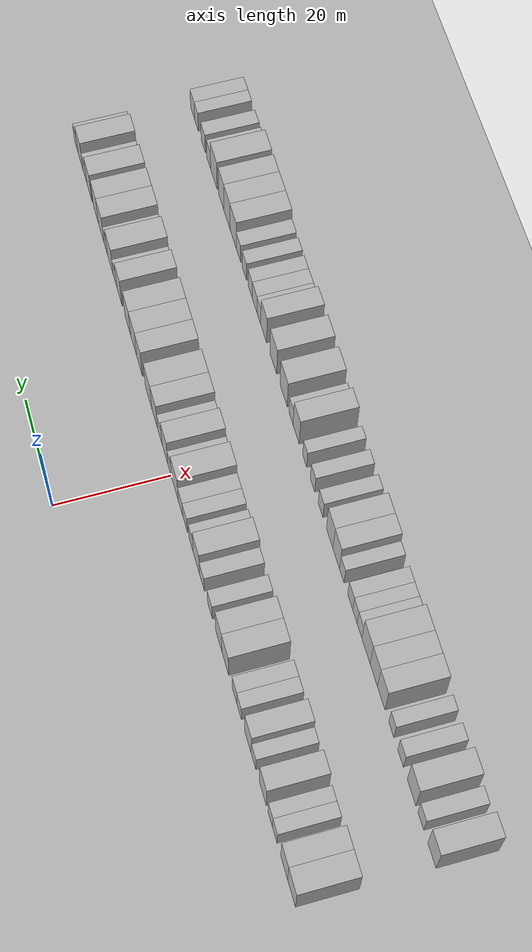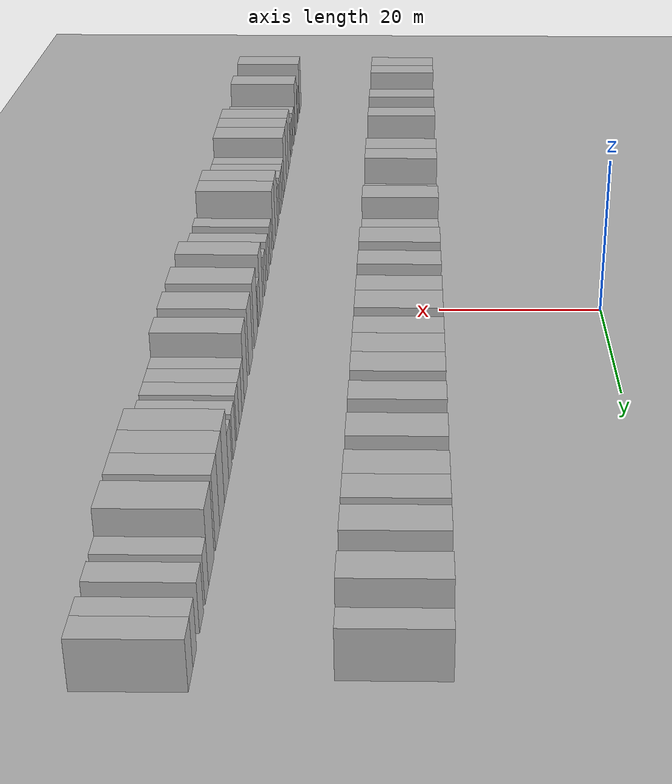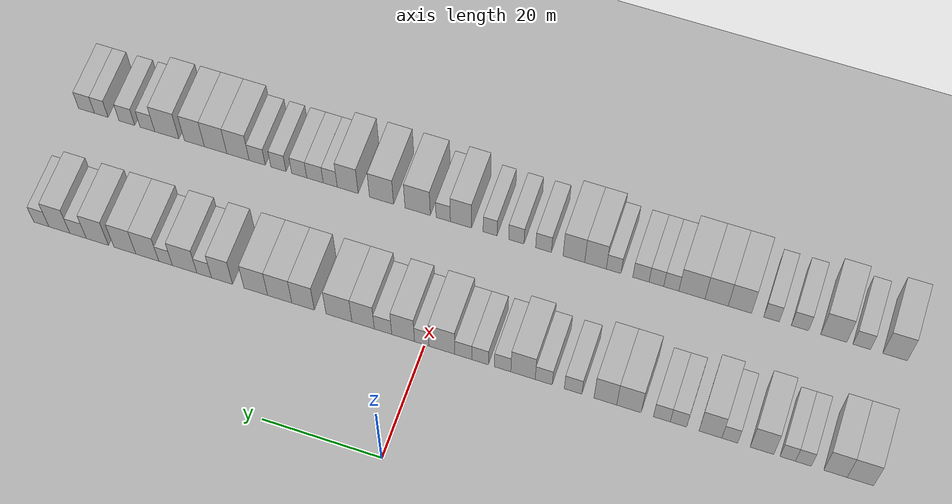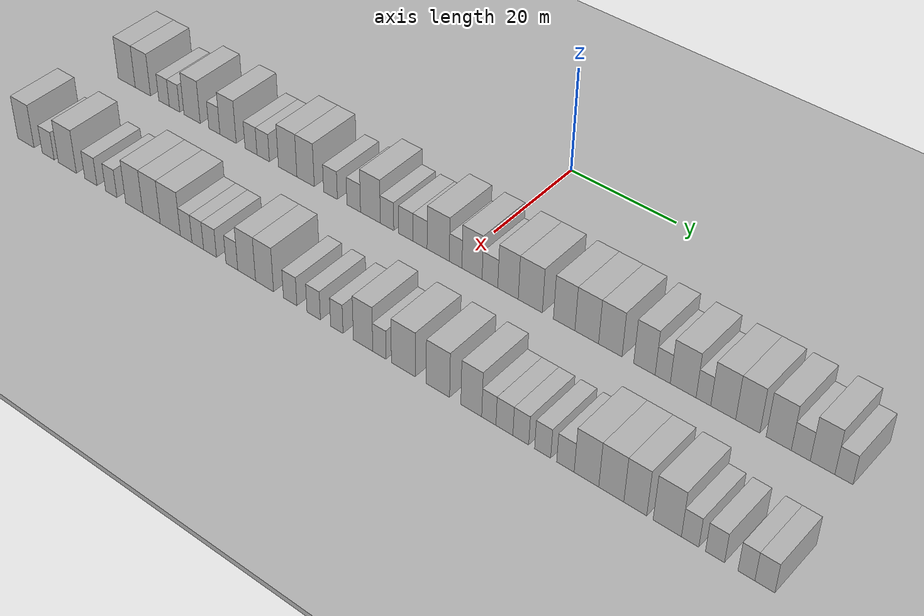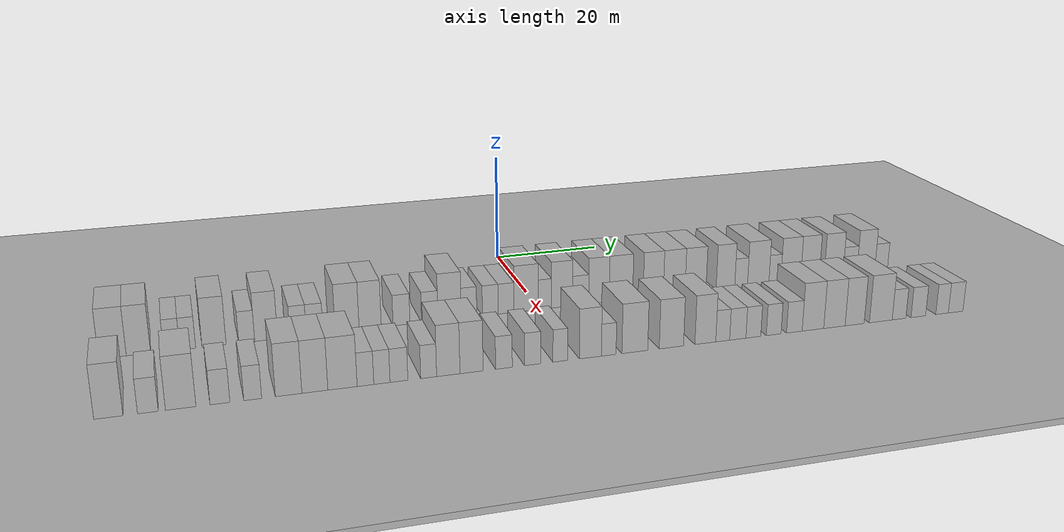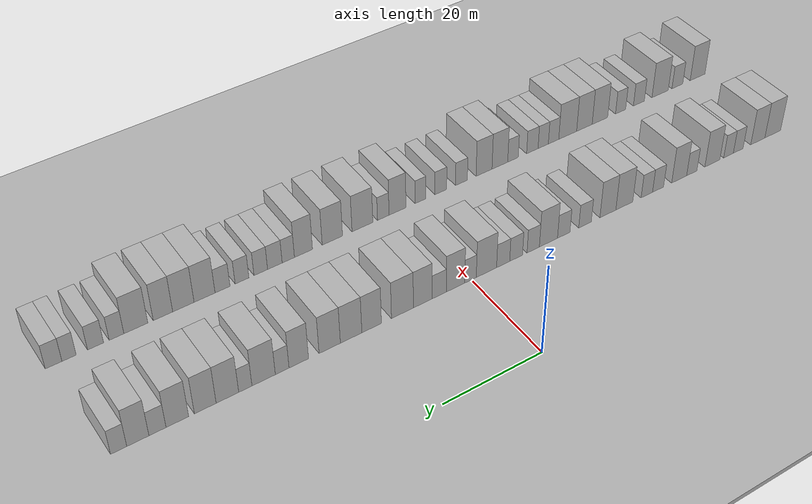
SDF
<sdf version="1.6">
 <world name="default">
  <include><name>ground_plane_1</name><uri>model://HANNAS_ground_plane</uri></include>
  <include>
   <name>ground_plane_2</name>
   <uri>model://HANNAS_ground_plane</uri>
   <pose>100 0 0  0 0 0</pose>
  </include>
  <model name="building_38">
   <static>1</static>
   <pose>25.0000 -71.4664 0 0.000000 0.000000 0.000000</pose>
   <link name="link">
    <pose>0 0 4.50 0 0 0</pose>
    <collision name="collision"><geometry><box><size>10.0000 4.2070 9.0000</size></box></geometry></collision>
    <visual name="visual">
     <cast_shadows>0</cast_shadows>
     <geometry><box><size>10.0000 4.2070 9.0000</size></box></geometry>
     <material>
      <script>
       <uri>model://HANNAS_wall/materials/scripts</uri>
       <uri>model://HANNAS_wall/materials/textures</uri>
       <name>vrc/HANNAS_wall</name>
      </script>
     </material>
    </visual>
   </link>
  </model>
  <model name="building_39">
   <static>1</static>
   <pose>25.0000 -67.4973 0 0.000000 0.000000 0.000000</pose>
   <link name="link">
    <pose>0 0 4.50 0 0 0</pose>
    <collision name="collision"><geometry><box><size>10.0000 3.7312 9.0000</size></box></geometry></collision>
    <visual name="visual">
     <cast_shadows>0</cast_shadows>
     <geometry><box><size>10.0000 3.7312 9.0000</size></box></geometry>
     <material>
      <script>
       <uri>model://HANNAS_wall/materials/scripts</uri>
       <uri>model://HANNAS_wall/materials/textures</uri>
       <name>vrc/HANNAS_wall</name>
      </script>
     </material>
    </visual>
   </link>
  </model>
  <model name="building_40">
   <static>1</static>
   <pose>25.0000 -62.3692 0 0.000000 0.000000 0.000000</pose>
   <link name="link">
    <pose>0 0 3.00 0 0 0</pose>
    <collision name="collision"><geometry><box><size>10.0000 2.5251 6.0000</size></box></geometry></collision>
    <visual name="visual">
     <cast_shadows>0</cast_shadows>
     <geometry><box><size>10.0000 2.5251 6.0000</size></box></geometry>
     <material>
      <script>
       <uri>model://HANNAS_wall/materials/scripts</uri>
       <uri>model://HANNAS_wall/materials/textures</uri>
       <name>vrc/HANNAS_wall</name>
      </script>
     </material>
    </visual>
   </link>
  </model>
  <model name="building_41">
   <static>1</static>
   <pose>25.0000 -59.8628 0 0.000000 0.000000 0.000000</pose>
   <link name="link">
    <pose>0 0 3.00 0 0 0</pose>
    <collision name="collision"><geometry><box><size>10.0000 2.4876 6.0000</size></box></geometry></collision>
    <visual name="visual">
     <cast_shadows>0</cast_shadows>
     <geometry><box><size>10.0000 2.4876 6.0000</size></box></geometry>
     <material>
      <script>
       <uri>model://HANNAS_wall/materials/scripts</uri>
       <uri>model://HANNAS_wall/materials/textures</uri>
       <name>vrc/HANNAS_wall</name>
      </script>
     </material>
    </visual>
   </link>
  </model>
  <model name="building_42">
   <static>1</static>
   <pose>25.0000 -55.7129 0 0.000000 0.000000 0.000000</pose>
   <link name="link">
    <pose>0 0 4.50 0 0 0</pose>
    <collision name="collision"><geometry><box><size>10.0000 3.8123 9.0000</size></box></geometry></collision>
    <visual name="visual">
     <cast_shadows>0</cast_shadows>
     <geometry><box><size>10.0000 3.8123 9.0000</size></box></geometry>
     <material>
      <script>
       <uri>model://HANNAS_wall/materials/scripts</uri>
       <uri>model://HANNAS_wall/materials/textures</uri>
       <name>vrc/HANNAS_wall</name>
      </script>
     </material>
    </visual>
   </link>
  </model>
  <model name="building_43">
   <static>1</static>
   <pose>25.0000 -50.5219 0 0.000000 0.000000 0.000000</pose>
   <link name="link">
    <pose>0 0 3.00 0 0 0</pose>
    <collision name="collision"><geometry><box><size>10.0000 2.5697 6.0000</size></box></geometry></collision>
    <visual name="visual">
     <cast_shadows>0</cast_shadows>
     <geometry><box><size>10.0000 2.5697 6.0000</size></box></geometry>
     <material>
      <script>
       <uri>model://HANNAS_wall/materials/scripts</uri>
       <uri>model://HANNAS_wall/materials/textures</uri>
       <name>vrc/HANNAS_wall</name>
      </script>
     </material>
    </visual>
   </link>
  </model>
  <model name="building_44">
   <static>1</static>
   <pose>25.0000 -47.3816 0 0.000000 0.000000 0.000000</pose>
   <link name="link">
    <pose>0 0 4.50 0 0 0</pose>
    <collision name="collision"><geometry><box><size>10.0000 3.7110 9.0000</size></box></geometry></collision>
    <visual name="visual">
     <cast_shadows>0</cast_shadows>
     <geometry><box><size>10.0000 3.7110 9.0000</size></box></geometry>
     <material>
      <script>
       <uri>model://HANNAS_wall/materials/scripts</uri>
       <uri>model://HANNAS_wall/materials/textures</uri>
       <name>vrc/HANNAS_wall</name>
      </script>
     </material>
    </visual>
   </link>
  </model>
  <model name="building_45">
   <static>1</static>
   <pose>25.0000 -42.1829 0 0.000000 0.000000 0.000000</pose>
   <link name="link">
    <pose>0 0 3.00 0 0 0</pose>
    <collision name="collision"><geometry><box><size>10.0000 2.6863 6.0000</size></box></geometry></collision>
    <visual name="visual">
     <cast_shadows>0</cast_shadows>
     <geometry><box><size>10.0000 2.6863 6.0000</size></box></geometry>
     <material>
      <script>
       <uri>model://HANNAS_wall/materials/scripts</uri>
       <uri>model://HANNAS_wall/materials/textures</uri>
       <name>vrc/HANNAS_wall</name>
      </script>
     </material>
    </visual>
   </link>
  </model>
  <model name="building_46">
   <static>1</static>
   <pose>25.0000 -39.4571 0 0.000000 0.000000 0.000000</pose>
   <link name="link">
    <pose>0 0 3.00 0 0 0</pose>
    <collision name="collision"><geometry><box><size>10.0000 2.7653 6.0000</size></box></geometry></collision>
    <visual name="visual">
     <cast_shadows>0</cast_shadows>
     <geometry><box><size>10.0000 2.7653 6.0000</size></box></geometry>
     <material>
      <script>
       <uri>model://HANNAS_wall/materials/scripts</uri>
       <uri>model://HANNAS_wall/materials/textures</uri>
       <name>vrc/HANNAS_wall</name>
      </script>
     </material>
    </visual>
   </link>
  </model>
  <model name="building_47">
   <static>1</static>
   <pose>25.0000 -34.0638 0 0.000000 0.000000 0.000000</pose>
   <link name="link">
    <pose>0 0 4.50 0 0 0</pose>
    <collision name="collision"><geometry><box><size>10.0000 4.0212 9.0000</size></box></geometry></collision>
    <visual name="visual">
     <cast_shadows>0</cast_shadows>
     <geometry><box><size>10.0000 4.0212 9.0000</size></box></geometry>
     <material>
      <script>
       <uri>model://HANNAS_wall/materials/scripts</uri>
       <uri>model://HANNAS_wall/materials/textures</uri>
       <name>vrc/HANNAS_wall</name>
      </script>
     </material>
    </visual>
   </link>
  </model>
  <model name="building_48">
   <static>1</static>
   <pose>25.0000 -30.1795 0 0.000000 0.000000 0.000000</pose>
   <link name="link">
    <pose>0 0 4.50 0 0 0</pose>
    <collision name="collision"><geometry><box><size>10.0000 3.7475 9.0000</size></box></geometry></collision>
    <visual name="visual">
     <cast_shadows>0</cast_shadows>
     <geometry><box><size>10.0000 3.7475 9.0000</size></box></geometry>
     <material>
      <script>
       <uri>model://HANNAS_wall/materials/scripts</uri>
       <uri>model://HANNAS_wall/materials/textures</uri>
       <name>vrc/HANNAS_wall</name>
      </script>
     </material>
    </visual>
   </link>
  </model>
  <model name="building_49">
   <static>1</static>
   <pose>25.0000 -24.8523 0 0.000000 0.000000 0.000000</pose>
   <link name="link">
    <pose>0 0 3.00 0 0 0</pose>
    <collision name="collision"><geometry><box><size>10.0000 2.9070 6.0000</size></box></geometry></collision>
    <visual name="visual">
     <cast_shadows>0</cast_shadows>
     <geometry><box><size>10.0000 2.9070 6.0000</size></box></geometry>
     <material>
      <script>
       <uri>model://HANNAS_wall/materials/scripts</uri>
       <uri>model://HANNAS_wall/materials/textures</uri>
       <name>vrc/HANNAS_wall</name>
      </script>
     </material>
    </visual>
   </link>
  </model>
  <model name="building_50">
   <static>1</static>
   <pose>25.0000 -19.9813 0 0.000000 0.000000 0.000000</pose>
   <link name="link">
    <pose>0 0 3.00 0 0 0</pose>
    <collision name="collision"><geometry><box><size>10.0000 2.8349 6.0000</size></box></geometry></collision>
    <visual name="visual">
     <cast_shadows>0</cast_shadows>
     <geometry><box><size>10.0000 2.8349 6.0000</size></box></geometry>
     <material>
      <script>
       <uri>model://HANNAS_wall/materials/scripts</uri>
       <uri>model://HANNAS_wall/materials/textures</uri>
       <name>vrc/HANNAS_wall</name>
      </script>
     </material>
    </visual>
   </link>
  </model>
  <model name="building_51">
   <static>1</static>
   <pose>25.0000 -16.5305 0 0.000000 0.000000 0.000000</pose>
   <link name="link">
    <pose>0 0 4.50 0 0 0</pose>
    <collision name="collision"><geometry><box><size>10.0000 4.0667 9.0000</size></box></geometry></collision>
    <visual name="visual">
     <cast_shadows>0</cast_shadows>
     <geometry><box><size>10.0000 4.0667 9.0000</size></box></geometry>
     <material>
      <script>
       <uri>model://HANNAS_wall/materials/scripts</uri>
       <uri>model://HANNAS_wall/materials/textures</uri>
       <name>vrc/HANNAS_wall</name>
      </script>
     </material>
    </visual>
   </link>
  </model>
  <model name="building_52">
   <static>1</static>
   <pose>25.0000 -13.1263 0 0.000000 0.000000 0.000000</pose>
   <link name="link">
    <pose>0 0 3.00 0 0 0</pose>
    <collision name="collision"><geometry><box><size>10.0000 2.7418 6.0000</size></box></geometry></collision>
    <visual name="visual">
     <cast_shadows>0</cast_shadows>
     <geometry><box><size>10.0000 2.7418 6.0000</size></box></geometry>
     <material>
      <script>
       <uri>model://HANNAS_wall/materials/scripts</uri>
       <uri>model://HANNAS_wall/materials/textures</uri>
       <name>vrc/HANNAS_wall</name>
      </script>
     </material>
    </visual>
   </link>
  </model>
  <model name="building_53">
   <static>1</static>
   <pose>25.0000 -9.3513 0 0.000000 0.000000 0.000000</pose>
   <link name="link">
    <pose>0 0 3.00 0 0 0</pose>
    <collision name="collision"><geometry><box><size>10.0000 2.8083 6.0000</size></box></geometry></collision>
    <visual name="visual">
     <cast_shadows>0</cast_shadows>
     <geometry><box><size>10.0000 2.8083 6.0000</size></box></geometry>
     <material>
      <script>
       <uri>model://HANNAS_wall/materials/scripts</uri>
       <uri>model://HANNAS_wall/materials/textures</uri>
       <name>vrc/HANNAS_wall</name>
      </script>
     </material>
    </visual>
   </link>
  </model>
  <model name="building_54">
   <static>1</static>
   <pose>25.0000 -6.5240 0 0.000000 0.000000 0.000000</pose>
   <link name="link">
    <pose>0 0 3.00 0 0 0</pose>
    <collision name="collision"><geometry><box><size>10.0000 2.8462 6.0000</size></box></geometry></collision>
    <visual name="visual">
     <cast_shadows>0</cast_shadows>
     <geometry><box><size>10.0000 2.8462 6.0000</size></box></geometry>
     <material>
      <script>
       <uri>model://HANNAS_wall/materials/scripts</uri>
       <uri>model://HANNAS_wall/materials/textures</uri>
       <name>vrc/HANNAS_wall</name>
      </script>
     </material>
    </visual>
   </link>
  </model>
  <model name="building_55">
   <static>1</static>
   <pose>25.0000 -2.9227 0 0.000000 0.000000 0.000000</pose>
   <link name="link">
    <pose>0 0 4.50 0 0 0</pose>
    <collision name="collision"><geometry><box><size>10.0000 4.3564 9.0000</size></box></geometry></collision>
    <visual name="visual">
     <cast_shadows>0</cast_shadows>
     <geometry><box><size>10.0000 4.3564 9.0000</size></box></geometry>
     <material>
      <script>
       <uri>model://HANNAS_wall/materials/scripts</uri>
       <uri>model://HANNAS_wall/materials/textures</uri>
       <name>vrc/HANNAS_wall</name>
      </script>
     </material>
    </visual>
   </link>
  </model>
  <model name="building_56">
   <static>1</static>
   <pose>25.0000 0.4780 0 0.000000 0.000000 0.000000</pose>
   <link name="link">
    <pose>0 0 3.00 0 0 0</pose>
    <collision name="collision"><geometry><box><size>10.0000 2.4449 6.0000</size></box></geometry></collision>
    <visual name="visual">
     <cast_shadows>0</cast_shadows>
     <geometry><box><size>10.0000 2.4449 6.0000</size></box></geometry>
     <material>
      <script>
       <uri>model://HANNAS_wall/materials/scripts</uri>
       <uri>model://HANNAS_wall/materials/textures</uri>
       <name>vrc/HANNAS_wall</name>
      </script>
     </material>
    </visual>
   </link>
  </model>
  <model name="building_57">
   <static>1</static>
   <pose>25.0000 3.6327 0 0.000000 0.000000 0.000000</pose>
   <link name="link">
    <pose>0 0 4.50 0 0 0</pose>
    <collision name="collision"><geometry><box><size>10.0000 3.8645 9.0000</size></box></geometry></collision>
    <visual name="visual">
     <cast_shadows>0</cast_shadows>
     <geometry><box><size>10.0000 3.8645 9.0000</size></box></geometry>
     <material>
      <script>
       <uri>model://HANNAS_wall/materials/scripts</uri>
       <uri>model://HANNAS_wall/materials/textures</uri>
       <name>vrc/HANNAS_wall</name>
      </script>
     </material>
    </visual>
   </link>
  </model>
  <model name="building_58">
   <static>1</static>
   <pose>25.0000 7.0509 0 0.000000 0.000000 0.000000</pose>
   <link name="link">
    <pose>0 0 3.00 0 0 0</pose>
    <collision name="collision"><geometry><box><size>10.0000 2.9720 6.0000</size></box></geometry></collision>
    <visual name="visual">
     <cast_shadows>0</cast_shadows>
     <geometry><box><size>10.0000 2.9720 6.0000</size></box></geometry>
     <material>
      <script>
       <uri>model://HANNAS_wall/materials/scripts</uri>
       <uri>model://HANNAS_wall/materials/textures</uri>
       <name>vrc/HANNAS_wall</name>
      </script>
     </material>
    </visual>
   </link>
  </model>
  <model name="building_59">
   <static>1</static>
   <pose>25.0000 10.4490 0 0.000000 0.000000 0.000000</pose>
   <link name="link">
    <pose>0 0 4.50 0 0 0</pose>
    <collision name="collision"><geometry><box><size>10.0000 3.8241 9.0000</size></box></geometry></collision>
    <visual name="visual">
     <cast_shadows>0</cast_shadows>
     <geometry><box><size>10.0000 3.8241 9.0000</size></box></geometry>
     <material>
      <script>
       <uri>model://HANNAS_wall/materials/scripts</uri>
       <uri>model://HANNAS_wall/materials/textures</uri>
       <name>vrc/HANNAS_wall</name>
      </script>
     </material>
    </visual>
   </link>
  </model>
  <model name="building_60">
   <static>1</static>
   <pose>25.0000 14.5827 0 0.000000 0.000000 0.000000</pose>
   <link name="link">
    <pose>0 0 4.50 0 0 0</pose>
    <collision name="collision"><geometry><box><size>10.0000 4.4433 9.0000</size></box></geometry></collision>
    <visual name="visual">
     <cast_shadows>0</cast_shadows>
     <geometry><box><size>10.0000 4.4433 9.0000</size></box></geometry>
     <material>
      <script>
       <uri>model://HANNAS_wall/materials/scripts</uri>
       <uri>model://HANNAS_wall/materials/textures</uri>
       <name>vrc/HANNAS_wall</name>
      </script>
     </material>
    </visual>
   </link>
  </model>
  <model name="building_61">
   <static>1</static>
   <pose>25.0000 20.7386 0 0.000000 0.000000 0.000000</pose>
   <link name="link">
    <pose>0 0 4.50 0 0 0</pose>
    <collision name="collision"><geometry><box><size>10.0000 3.8686 9.0000</size></box></geometry></collision>
    <visual name="visual">
     <cast_shadows>0</cast_shadows>
     <geometry><box><size>10.0000 3.8686 9.0000</size></box></geometry>
     <material>
      <script>
       <uri>model://HANNAS_wall/materials/scripts</uri>
       <uri>model://HANNAS_wall/materials/textures</uri>
       <name>vrc/HANNAS_wall</name>
      </script>
     </material>
    </visual>
   </link>
  </model>
  <model name="building_62">
   <static>1</static>
   <pose>25.0000 24.7701 0 0.000000 0.000000 0.000000</pose>
   <link name="link">
    <pose>0 0 4.50 0 0 0</pose>
    <collision name="collision"><geometry><box><size>10.0000 4.1943 9.0000</size></box></geometry></collision>
    <visual name="visual">
     <cast_shadows>0</cast_shadows>
     <geometry><box><size>10.0000 4.1943 9.0000</size></box></geometry>
     <material>
      <script>
       <uri>model://HANNAS_wall/materials/scripts</uri>
       <uri>model://HANNAS_wall/materials/textures</uri>
       <name>vrc/HANNAS_wall</name>
      </script>
     </material>
    </visual>
   </link>
  </model>
  <model name="building_63">
   <static>1</static>
   <pose>25.0000 28.9150 0 0.000000 0.000000 0.000000</pose>
   <link name="link">
    <pose>0 0 4.50 0 0 0</pose>
    <collision name="collision"><geometry><box><size>10.0000 4.0955 9.0000</size></box></geometry></collision>
    <visual name="visual">
     <cast_shadows>0</cast_shadows>
     <geometry><box><size>10.0000 4.0955 9.0000</size></box></geometry>
     <material>
      <script>
       <uri>model://HANNAS_wall/materials/scripts</uri>
       <uri>model://HANNAS_wall/materials/textures</uri>
       <name>vrc/HANNAS_wall</name>
      </script>
     </material>
    </visual>
   </link>
  </model>
  <model name="building_64">
   <static>1</static>
   <pose>25.0000 34.7984 0 0.000000 0.000000 0.000000</pose>
   <link name="link">
    <pose>0 0 4.50 0 0 0</pose>
    <collision name="collision"><geometry><box><size>10.0000 3.6713 9.0000</size></box></geometry></collision>
    <visual name="visual">
     <cast_shadows>0</cast_shadows>
     <geometry><box><size>10.0000 3.6713 9.0000</size></box></geometry>
     <material>
      <script>
       <uri>model://HANNAS_wall/materials/scripts</uri>
       <uri>model://HANNAS_wall/materials/textures</uri>
       <name>vrc/HANNAS_wall</name>
      </script>
     </material>
    </visual>
   </link>
  </model>
  <model name="building_65">
   <static>1</static>
   <pose>25.0000 37.9108 0 0.000000 0.000000 0.000000</pose>
   <link name="link">
    <pose>0 0 3.00 0 0 0</pose>
    <collision name="collision"><geometry><box><size>10.0000 2.5535 6.0000</size></box></geometry></collision>
    <visual name="visual">
     <cast_shadows>0</cast_shadows>
     <geometry><box><size>10.0000 2.5535 6.0000</size></box></geometry>
     <material>
      <script>
       <uri>model://HANNAS_wall/materials/scripts</uri>
       <uri>model://HANNAS_wall/materials/textures</uri>
       <name>vrc/HANNAS_wall</name>
      </script>
     </material>
    </visual>
   </link>
  </model>
  <model name="building_66">
   <static>1</static>
   <pose>25.0000 41.3335 0 0.000000 0.000000 0.000000</pose>
   <link name="link">
    <pose>0 0 4.50 0 0 0</pose>
    <collision name="collision"><geometry><box><size>10.0000 4.2920 9.0000</size></box></geometry></collision>
    <visual name="visual">
     <cast_shadows>0</cast_shadows>
     <geometry><box><size>10.0000 4.2920 9.0000</size></box></geometry>
     <material>
      <script>
       <uri>model://HANNAS_wall/materials/scripts</uri>
       <uri>model://HANNAS_wall/materials/textures</uri>
       <name>vrc/HANNAS_wall</name>
      </script>
     </material>
    </visual>
   </link>
  </model>
  <model name="building_67">
   <static>1</static>
   <pose>25.0000 44.6829 0 0.000000 0.000000 0.000000</pose>
   <link name="link">
    <pose>0 0 3.00 0 0 0</pose>
    <collision name="collision"><geometry><box><size>10.0000 2.4066 6.0000</size></box></geometry></collision>
    <visual name="visual">
     <cast_shadows>0</cast_shadows>
     <geometry><box><size>10.0000 2.4066 6.0000</size></box></geometry>
     <material>
      <script>
       <uri>model://HANNAS_wall/materials/scripts</uri>
       <uri>model://HANNAS_wall/materials/textures</uri>
       <name>vrc/HANNAS_wall</name>
      </script>
     </material>
    </visual>
   </link>
  </model>
  <model name="building_68">
   <static>1</static>
   <pose>25.0000 47.9116 0 0.000000 0.000000 0.000000</pose>
   <link name="link">
    <pose>0 0 4.50 0 0 0</pose>
    <collision name="collision"><geometry><box><size>10.0000 4.0508 9.0000</size></box></geometry></collision>
    <visual name="visual">
     <cast_shadows>0</cast_shadows>
     <geometry><box><size>10.0000 4.0508 9.0000</size></box></geometry>
     <material>
      <script>
       <uri>model://HANNAS_wall/materials/scripts</uri>
       <uri>model://HANNAS_wall/materials/textures</uri>
       <name>vrc/HANNAS_wall</name>
      </script>
     </material>
    </visual>
   </link>
  </model>
  <model name="building_69">
   <static>1</static>
   <pose>25.0000 51.8623 0 0.000000 0.000000 0.000000</pose>
   <link name="link">
    <pose>0 0 4.50 0 0 0</pose>
    <collision name="collision"><geometry><box><size>10.0000 3.8506 9.0000</size></box></geometry></collision>
    <visual name="visual">
     <cast_shadows>0</cast_shadows>
     <geometry><box><size>10.0000 3.8506 9.0000</size></box></geometry>
     <material>
      <script>
       <uri>model://HANNAS_wall/materials/scripts</uri>
       <uri>model://HANNAS_wall/materials/textures</uri>
       <name>vrc/HANNAS_wall</name>
      </script>
     </material>
    </visual>
   </link>
  </model>
  <model name="building_70">
   <static>1</static>
   <pose>25.0000 56.7521 0 0.000000 0.000000 0.000000</pose>
   <link name="link">
    <pose>0 0 4.50 0 0 0</pose>
    <collision name="collision"><geometry><box><size>10.0000 3.9291 9.0000</size></box></geometry></collision>
    <visual name="visual">
     <cast_shadows>0</cast_shadows>
     <geometry><box><size>10.0000 3.9291 9.0000</size></box></geometry>
     <material>
      <script>
       <uri>model://HANNAS_wall/materials/scripts</uri>
       <uri>model://HANNAS_wall/materials/textures</uri>
       <name>vrc/HANNAS_wall</name>
      </script>
     </material>
    </visual>
   </link>
  </model>
  <model name="building_71">
   <static>1</static>
   <pose>25.0000 60.1828 0 0.000000 0.000000 0.000000</pose>
   <link name="link">
    <pose>0 0 3.00 0 0 0</pose>
    <collision name="collision"><geometry><box><size>10.0000 2.9321 6.0000</size></box></geometry></collision>
    <visual name="visual">
     <cast_shadows>0</cast_shadows>
     <geometry><box><size>10.0000 2.9321 6.0000</size></box></geometry>
     <material>
      <script>
       <uri>model://HANNAS_wall/materials/scripts</uri>
       <uri>model://HANNAS_wall/materials/textures</uri>
       <name>vrc/HANNAS_wall</name>
      </script>
     </material>
    </visual>
   </link>
  </model>
  <model name="building_72">
   <static>1</static>
   <pose>25.0000 63.5263 0 0.000000 0.000000 0.000000</pose>
   <link name="link">
    <pose>0 0 4.50 0 0 0</pose>
    <collision name="collision"><geometry><box><size>10.0000 3.7550 9.0000</size></box></geometry></collision>
    <visual name="visual">
     <cast_shadows>0</cast_shadows>
     <geometry><box><size>10.0000 3.7550 9.0000</size></box></geometry>
     <material>
      <script>
       <uri>model://HANNAS_wall/materials/scripts</uri>
       <uri>model://HANNAS_wall/materials/textures</uri>
       <name>vrc/HANNAS_wall</name>
      </script>
     </material>
    </visual>
   </link>
  </model>
  <model name="building_73">
   <static>1</static>
   <pose>25.0000 66.7647 0 0.000000 0.000000 0.000000</pose>
   <link name="link">
    <pose>0 0 3.00 0 0 0</pose>
    <collision name="collision"><geometry><box><size>10.0000 2.7217 6.0000</size></box></geometry></collision>
    <visual name="visual">
     <cast_shadows>0</cast_shadows>
     <geometry><box><size>10.0000 2.7217 6.0000</size></box></geometry>
     <material>
      <script>
       <uri>model://HANNAS_wall/materials/scripts</uri>
       <uri>model://HANNAS_wall/materials/textures</uri>
       <name>vrc/HANNAS_wall</name>
      </script>
     </material>
    </visual>
   </link>
  </model>
  <model name="building_144">
   <static>1</static>
   <pose>47.0000 -71.7233 0 0.000000 0.000000 0.000000</pose>
   <link name="link">
    <pose>0 0 4.50 0 0 0</pose>
    <collision name="collision"><geometry><box><size>10.0000 4.0114 9.0000</size></box></geometry></collision>
    <visual name="visual">
     <cast_shadows>0</cast_shadows>
     <geometry><box><size>10.0000 4.0114 9.0000</size></box></geometry>
     <material>
      <script>
       <uri>model://HANNAS_wall/materials/scripts</uri>
       <uri>model://HANNAS_wall/materials/textures</uri>
       <name>vrc/HANNAS_wall</name>
      </script>
     </material>
    </visual>
   </link>
  </model>
  <model name="building_145">
   <static>1</static>
   <pose>47.0000 -66.2725 0 0.000000 0.000000 0.000000</pose>
   <link name="link">
    <pose>0 0 3.00 0 0 0</pose>
    <collision name="collision"><geometry><box><size>10.0000 2.8903 6.0000</size></box></geometry></collision>
    <visual name="visual">
     <cast_shadows>0</cast_shadows>
     <geometry><box><size>10.0000 2.8903 6.0000</size></box></geometry>
     <material>
      <script>
       <uri>model://HANNAS_wall/materials/scripts</uri>
       <uri>model://HANNAS_wall/materials/textures</uri>
       <name>vrc/HANNAS_wall</name>
      </script>
     </material>
    </visual>
   </link>
  </model>
  <model name="building_146">
   <static>1</static>
   <pose>47.0000 -61.6784 0 0.000000 0.000000 0.000000</pose>
   <link name="link">
    <pose>0 0 4.50 0 0 0</pose>
    <collision name="collision"><geometry><box><size>10.0000 4.2980 9.0000</size></box></geometry></collision>
    <visual name="visual">
     <cast_shadows>0</cast_shadows>
     <geometry><box><size>10.0000 4.2980 9.0000</size></box></geometry>
     <material>
      <script>
       <uri>model://HANNAS_wall/materials/scripts</uri>
       <uri>model://HANNAS_wall/materials/textures</uri>
       <name>vrc/HANNAS_wall</name>
      </script>
     </material>
    </visual>
   </link>
  </model>
  <model name="building_147">
   <static>1</static>
   <pose>47.0000 -56.1047 0 0.000000 0.000000 0.000000</pose>
   <link name="link">
    <pose>0 0 3.00 0 0 0</pose>
    <collision name="collision"><geometry><box><size>10.0000 2.8494 6.0000</size></box></geometry></collision>
    <visual name="visual">
     <cast_shadows>0</cast_shadows>
     <geometry><box><size>10.0000 2.8494 6.0000</size></box></geometry>
     <material>
      <script>
       <uri>model://HANNAS_wall/materials/scripts</uri>
       <uri>model://HANNAS_wall/materials/textures</uri>
       <name>vrc/HANNAS_wall</name>
      </script>
     </material>
    </visual>
   </link>
  </model>
  <model name="building_148">
   <static>1</static>
   <pose>47.0000 -51.3818 0 0.000000 0.000000 0.000000</pose>
   <link name="link">
    <pose>0 0 3.00 0 0 0</pose>
    <collision name="collision"><geometry><box><size>10.0000 2.5962 6.0000</size></box></geometry></collision>
    <visual name="visual">
     <cast_shadows>0</cast_shadows>
     <geometry><box><size>10.0000 2.5962 6.0000</size></box></geometry>
     <material>
      <script>
       <uri>model://HANNAS_wall/materials/scripts</uri>
       <uri>model://HANNAS_wall/materials/textures</uri>
       <name>vrc/HANNAS_wall</name>
      </script>
     </material>
    </visual>
   </link>
  </model>
  <model name="building_149">
   <static>1</static>
   <pose>47.0000 -46.1283 0 0.000000 0.000000 0.000000</pose>
   <link name="link">
    <pose>0 0 4.50 0 0 0</pose>
    <collision name="collision"><geometry><box><size>10.0000 3.9108 9.0000</size></box></geometry></collision>
    <visual name="visual">
     <cast_shadows>0</cast_shadows>
     <geometry><box><size>10.0000 3.9108 9.0000</size></box></geometry>
     <material>
      <script>
       <uri>model://HANNAS_wall/materials/scripts</uri>
       <uri>model://HANNAS_wall/materials/textures</uri>
       <name>vrc/HANNAS_wall</name>
      </script>
     </material>
    </visual>
   </link>
  </model>
  <model name="building_150">
   <static>1</static>
   <pose>47.0000 -42.2337 0 0.000000 0.000000 0.000000</pose>
   <link name="link">
    <pose>0 0 4.50 0 0 0</pose>
    <collision name="collision"><geometry><box><size>10.0000 3.8784 9.0000</size></box></geometry></collision>
    <visual name="visual">
     <cast_shadows>0</cast_shadows>
     <geometry><box><size>10.0000 3.8784 9.0000</size></box></geometry>
     <material>
      <script>
       <uri>model://HANNAS_wall/materials/scripts</uri>
       <uri>model://HANNAS_wall/materials/textures</uri>
       <name>vrc/HANNAS_wall</name>
      </script>
     </material>
    </visual>
   </link>
  </model>
  <model name="building_151">
   <static>1</static>
   <pose>47.0000 -38.0892 0 0.000000 0.000000 0.000000</pose>
   <link name="link">
    <pose>0 0 4.50 0 0 0</pose>
    <collision name="collision"><geometry><box><size>10.0000 4.4106 9.0000</size></box></geometry></collision>
    <visual name="visual">
     <cast_shadows>0</cast_shadows>
     <geometry><box><size>10.0000 4.4106 9.0000</size></box></geometry>
     <material>
      <script>
       <uri>model://HANNAS_wall/materials/scripts</uri>
       <uri>model://HANNAS_wall/materials/textures</uri>
       <name>vrc/HANNAS_wall</name>
      </script>
     </material>
    </visual>
   </link>
  </model>
  <model name="building_152">
   <static>1</static>
   <pose>47.0000 -34.6155 0 0.000000 0.000000 0.000000</pose>
   <link name="link">
    <pose>0 0 3.00 0 0 0</pose>
    <collision name="collision"><geometry><box><size>10.0000 2.5367 6.0000</size></box></geometry></collision>
    <visual name="visual">
     <cast_shadows>0</cast_shadows>
     <geometry><box><size>10.0000 2.5367 6.0000</size></box></geometry>
     <material>
      <script>
       <uri>model://HANNAS_wall/materials/scripts</uri>
       <uri>model://HANNAS_wall/materials/textures</uri>
       <name>vrc/HANNAS_wall</name>
      </script>
     </material>
    </visual>
   </link>
  </model>
  <model name="building_153">
   <static>1</static>
   <pose>47.0000 -32.1035 0 0.000000 0.000000 0.000000</pose>
   <link name="link">
    <pose>0 0 3.00 0 0 0</pose>
    <collision name="collision"><geometry><box><size>10.0000 2.4874 6.0000</size></box></geometry></collision>
    <visual name="visual">
     <cast_shadows>0</cast_shadows>
     <geometry><box><size>10.0000 2.4874 6.0000</size></box></geometry>
     <material>
      <script>
       <uri>model://HANNAS_wall/materials/scripts</uri>
       <uri>model://HANNAS_wall/materials/textures</uri>
       <name>vrc/HANNAS_wall</name>
      </script>
     </material>
    </visual>
   </link>
  </model>
  <model name="building_154">
   <static>1</static>
   <pose>47.0000 -29.4840 0 0.000000 0.000000 0.000000</pose>
   <link name="link">
    <pose>0 0 3.00 0 0 0</pose>
    <collision name="collision"><geometry><box><size>10.0000 2.7514 6.0000</size></box></geometry></collision>
    <visual name="visual">
     <cast_shadows>0</cast_shadows>
     <geometry><box><size>10.0000 2.7514 6.0000</size></box></geometry>
     <material>
      <script>
       <uri>model://HANNAS_wall/materials/scripts</uri>
       <uri>model://HANNAS_wall/materials/textures</uri>
       <name>vrc/HANNAS_wall</name>
      </script>
     </material>
    </visual>
   </link>
  </model>
  <model name="building_155">
   <static>1</static>
   <pose>47.0000 -24.8644 0 0.000000 0.000000 0.000000</pose>
   <link name="link">
    <pose>0 0 3.00 0 0 0</pose>
    <collision name="collision"><geometry><box><size>10.0000 2.4878 6.0000</size></box></geometry></collision>
    <visual name="visual">
     <cast_shadows>0</cast_shadows>
     <geometry><box><size>10.0000 2.4878 6.0000</size></box></geometry>
     <material>
      <script>
       <uri>model://HANNAS_wall/materials/scripts</uri>
       <uri>model://HANNAS_wall/materials/textures</uri>
       <name>vrc/HANNAS_wall</name>
      </script>
     </material>
    </visual>
   </link>
  </model>
  <model name="building_156">
   <static>1</static>
   <pose>47.0000 -21.7807 0 0.000000 0.000000 0.000000</pose>
   <link name="link">
    <pose>0 0 4.50 0 0 0</pose>
    <collision name="collision"><geometry><box><size>10.0000 3.6795 9.0000</size></box></geometry></collision>
    <visual name="visual">
     <cast_shadows>0</cast_shadows>
     <geometry><box><size>10.0000 3.6795 9.0000</size></box></geometry>
     <material>
      <script>
       <uri>model://HANNAS_wall/materials/scripts</uri>
       <uri>model://HANNAS_wall/materials/textures</uri>
       <name>vrc/HANNAS_wall</name>
      </script>
     </material>
    </visual>
   </link>
  </model>
  <model name="building_157">
   <static>1</static>
   <pose>47.0000 -18.0944 0 0.000000 0.000000 0.000000</pose>
   <link name="link">
    <pose>0 0 4.50 0 0 0</pose>
    <collision name="collision"><geometry><box><size>10.0000 3.6932 9.0000</size></box></geometry></collision>
    <visual name="visual">
     <cast_shadows>0</cast_shadows>
     <geometry><box><size>10.0000 3.6932 9.0000</size></box></geometry>
     <material>
      <script>
       <uri>model://HANNAS_wall/materials/scripts</uri>
       <uri>model://HANNAS_wall/materials/textures</uri>
       <name>vrc/HANNAS_wall</name>
      </script>
     </material>
    </visual>
   </link>
  </model>
  <model name="building_158">
   <static>1</static>
   <pose>47.0000 -12.8948 0 0.000000 0.000000 0.000000</pose>
   <link name="link">
    <pose>0 0 3.00 0 0 0</pose>
    <collision name="collision"><geometry><box><size>10.0000 2.7059 6.0000</size></box></geometry></collision>
    <visual name="visual">
     <cast_shadows>0</cast_shadows>
     <geometry><box><size>10.0000 2.7059 6.0000</size></box></geometry>
     <material>
      <script>
       <uri>model://HANNAS_wall/materials/scripts</uri>
       <uri>model://HANNAS_wall/materials/textures</uri>
       <name>vrc/HANNAS_wall</name>
      </script>
     </material>
    </visual>
   </link>
  </model>
  <model name="building_159">
   <static>1</static>
   <pose>47.0000 -8.2152 0 0.000000 0.000000 0.000000</pose>
   <link name="link">
    <pose>0 0 3.00 0 0 0</pose>
    <collision name="collision"><geometry><box><size>10.0000 2.6534 6.0000</size></box></geometry></collision>
    <visual name="visual">
     <cast_shadows>0</cast_shadows>
     <geometry><box><size>10.0000 2.6534 6.0000</size></box></geometry>
     <material>
      <script>
       <uri>model://HANNAS_wall/materials/scripts</uri>
       <uri>model://HANNAS_wall/materials/textures</uri>
       <name>vrc/HANNAS_wall</name>
      </script>
     </material>
    </visual>
   </link>
  </model>
  <model name="building_160">
   <static>1</static>
   <pose>47.0000 -3.6867 0 0.000000 0.000000 0.000000</pose>
   <link name="link">
    <pose>0 0 3.00 0 0 0</pose>
    <collision name="collision"><geometry><box><size>10.0000 2.4037 6.0000</size></box></geometry></collision>
    <visual name="visual">
     <cast_shadows>0</cast_shadows>
     <geometry><box><size>10.0000 2.4037 6.0000</size></box></geometry>
     <material>
      <script>
       <uri>model://HANNAS_wall/materials/scripts</uri>
       <uri>model://HANNAS_wall/materials/textures</uri>
       <name>vrc/HANNAS_wall</name>
      </script>
     </material>
    </visual>
   </link>
  </model>
  <model name="building_161">
   <static>1</static>
   <pose>47.0000 1.3575 0 0.000000 0.000000 0.000000</pose>
   <link name="link">
    <pose>0 0 4.50 0 0 0</pose>
    <collision name="collision"><geometry><box><size>10.0000 3.6845 9.0000</size></box></geometry></collision>
    <visual name="visual">
     <cast_shadows>0</cast_shadows>
     <geometry><box><size>10.0000 3.6845 9.0000</size></box></geometry>
     <material>
      <script>
       <uri>model://HANNAS_wall/materials/scripts</uri>
       <uri>model://HANNAS_wall/materials/textures</uri>
       <name>vrc/HANNAS_wall</name>
      </script>
     </material>
    </visual>
   </link>
  </model>
  <model name="building_162">
   <static>1</static>
   <pose>47.0000 4.4468 0 0.000000 0.000000 0.000000</pose>
   <link name="link">
    <pose>0 0 3.00 0 0 0</pose>
    <collision name="collision"><geometry><box><size>10.0000 2.4941 6.0000</size></box></geometry></collision>
    <visual name="visual">
     <cast_shadows>0</cast_shadows>
     <geometry><box><size>10.0000 2.4941 6.0000</size></box></geometry>
     <material>
      <script>
       <uri>model://HANNAS_wall/materials/scripts</uri>
       <uri>model://HANNAS_wall/materials/textures</uri>
       <name>vrc/HANNAS_wall</name>
      </script>
     </material>
    </visual>
   </link>
  </model>
  <model name="building_163">
   <static>1</static>
   <pose>47.0000 8.9043 0 0.000000 0.000000 0.000000</pose>
   <link name="link">
    <pose>0 0 4.50 0 0 0</pose>
    <collision name="collision"><geometry><box><size>10.0000 4.4208 9.0000</size></box></geometry></collision>
    <visual name="visual">
     <cast_shadows>0</cast_shadows>
     <geometry><box><size>10.0000 4.4208 9.0000</size></box></geometry>
     <material>
      <script>
       <uri>model://HANNAS_wall/materials/scripts</uri>
       <uri>model://HANNAS_wall/materials/textures</uri>
       <name>vrc/HANNAS_wall</name>
      </script>
     </material>
    </visual>
   </link>
  </model>
  <model name="building_164">
   <static>1</static>
   <pose>47.0000 15.2309 0 0.000000 0.000000 0.000000</pose>
   <link name="link">
    <pose>0 0 4.50 0 0 0</pose>
    <collision name="collision"><geometry><box><size>10.0000 4.2323 9.0000</size></box></geometry></collision>
    <visual name="visual">
     <cast_shadows>0</cast_shadows>
     <geometry><box><size>10.0000 4.2323 9.0000</size></box></geometry>
     <material>
      <script>
       <uri>model://HANNAS_wall/materials/scripts</uri>
       <uri>model://HANNAS_wall/materials/textures</uri>
       <name>vrc/HANNAS_wall</name>
      </script>
     </material>
    </visual>
   </link>
  </model>
  <model name="building_165">
   <static>1</static>
   <pose>47.0000 21.1918 0 0.000000 0.000000 0.000000</pose>
   <link name="link">
    <pose>0 0 4.50 0 0 0</pose>
    <collision name="collision"><geometry><box><size>10.0000 3.6895 9.0000</size></box></geometry></collision>
    <visual name="visual">
     <cast_shadows>0</cast_shadows>
     <geometry><box><size>10.0000 3.6895 9.0000</size></box></geometry>
     <material>
      <script>
       <uri>model://HANNAS_wall/materials/scripts</uri>
       <uri>model://HANNAS_wall/materials/textures</uri>
       <name>vrc/HANNAS_wall</name>
      </script>
     </material>
    </visual>
   </link>
  </model>
  <model name="building_166">
   <static>1</static>
   <pose>47.0000 24.2795 0 0.000000 0.000000 0.000000</pose>
   <link name="link">
    <pose>0 0 3.00 0 0 0</pose>
    <collision name="collision"><geometry><box><size>10.0000 2.4860 6.0000</size></box></geometry></collision>
    <visual name="visual">
     <cast_shadows>0</cast_shadows>
     <geometry><box><size>10.0000 2.4860 6.0000</size></box></geometry>
     <material>
      <script>
       <uri>model://HANNAS_wall/materials/scripts</uri>
       <uri>model://HANNAS_wall/materials/textures</uri>
       <name>vrc/HANNAS_wall</name>
      </script>
     </material>
    </visual>
   </link>
  </model>
  <model name="building_167">
   <static>1</static>
   <pose>47.0000 26.9838 0 0.000000 0.000000 0.000000</pose>
   <link name="link">
    <pose>0 0 3.00 0 0 0</pose>
    <collision name="collision"><geometry><box><size>10.0000 2.9225 6.0000</size></box></geometry></collision>
    <visual name="visual">
     <cast_shadows>0</cast_shadows>
     <geometry><box><size>10.0000 2.9225 6.0000</size></box></geometry>
     <material>
      <script>
       <uri>model://HANNAS_wall/materials/scripts</uri>
       <uri>model://HANNAS_wall/materials/textures</uri>
       <name>vrc/HANNAS_wall</name>
      </script>
     </material>
    </visual>
   </link>
  </model>
  <model name="building_168">
   <static>1</static>
   <pose>47.0000 29.7913 0 0.000000 0.000000 0.000000</pose>
   <link name="link">
    <pose>0 0 3.00 0 0 0</pose>
    <collision name="collision"><geometry><box><size>10.0000 2.6926 6.0000</size></box></geometry></collision>
    <visual name="visual">
     <cast_shadows>0</cast_shadows>
     <geometry><box><size>10.0000 2.6926 6.0000</size></box></geometry>
     <material>
      <script>
       <uri>model://HANNAS_wall/materials/scripts</uri>
       <uri>model://HANNAS_wall/materials/textures</uri>
       <name>vrc/HANNAS_wall</name>
      </script>
     </material>
    </visual>
   </link>
  </model>
  <model name="building_169">
   <static>1</static>
   <pose>47.0000 33.4901 0 0.000000 0.000000 0.000000</pose>
   <link name="link">
    <pose>0 0 3.00 0 0 0</pose>
    <collision name="collision"><geometry><box><size>10.0000 2.7049 6.0000</size></box></geometry></collision>
    <visual name="visual">
     <cast_shadows>0</cast_shadows>
     <geometry><box><size>10.0000 2.7049 6.0000</size></box></geometry>
     <material>
      <script>
       <uri>model://HANNAS_wall/materials/scripts</uri>
       <uri>model://HANNAS_wall/materials/textures</uri>
       <name>vrc/HANNAS_wall</name>
      </script>
     </material>
    </visual>
   </link>
  </model>
  <model name="building_170">
   <static>1</static>
   <pose>47.0000 37.2880 0 0.000000 0.000000 0.000000</pose>
   <link name="link">
    <pose>0 0 3.00 0 0 0</pose>
    <collision name="collision"><geometry><box><size>10.0000 2.8909 6.0000</size></box></geometry></collision>
    <visual name="visual">
     <cast_shadows>0</cast_shadows>
     <geometry><box><size>10.0000 2.8909 6.0000</size></box></geometry>
     <material>
      <script>
       <uri>model://HANNAS_wall/materials/scripts</uri>
       <uri>model://HANNAS_wall/materials/textures</uri>
       <name>vrc/HANNAS_wall</name>
      </script>
     </material>
    </visual>
   </link>
  </model>
  <model name="building_171">
   <static>1</static>
   <pose>47.0000 40.7414 0 0.000000 0.000000 0.000000</pose>
   <link name="link">
    <pose>0 0 4.50 0 0 0</pose>
    <collision name="collision"><geometry><box><size>10.0000 4.0159 9.0000</size></box></geometry></collision>
    <visual name="visual">
     <cast_shadows>0</cast_shadows>
     <geometry><box><size>10.0000 4.0159 9.0000</size></box></geometry>
     <material>
      <script>
       <uri>model://HANNAS_wall/materials/scripts</uri>
       <uri>model://HANNAS_wall/materials/textures</uri>
       <name>vrc/HANNAS_wall</name>
      </script>
     </material>
    </visual>
   </link>
  </model>
  <model name="building_172">
   <static>1</static>
   <pose>47.0000 44.7648 0 0.000000 0.000000 0.000000</pose>
   <link name="link">
    <pose>0 0 4.50 0 0 0</pose>
    <collision name="collision"><geometry><box><size>10.0000 4.0308 9.0000</size></box></geometry></collision>
    <visual name="visual">
     <cast_shadows>0</cast_shadows>
     <geometry><box><size>10.0000 4.0308 9.0000</size></box></geometry>
     <material>
      <script>
       <uri>model://HANNAS_wall/materials/scripts</uri>
       <uri>model://HANNAS_wall/materials/textures</uri>
       <name>vrc/HANNAS_wall</name>
      </script>
     </material>
    </visual>
   </link>
  </model>
  <model name="building_173">
   <static>1</static>
   <pose>47.0000 48.5904 0 0.000000 0.000000 0.000000</pose>
   <link name="link">
    <pose>0 0 4.50 0 0 0</pose>
    <collision name="collision"><geometry><box><size>10.0000 3.6203 9.0000</size></box></geometry></collision>
    <visual name="visual">
     <cast_shadows>0</cast_shadows>
     <geometry><box><size>10.0000 3.6203 9.0000</size></box></geometry>
     <material>
      <script>
       <uri>model://HANNAS_wall/materials/scripts</uri>
       <uri>model://HANNAS_wall/materials/textures</uri>
       <name>vrc/HANNAS_wall</name>
      </script>
     </material>
    </visual>
   </link>
  </model>
  <model name="building_174">
   <static>1</static>
   <pose>47.0000 53.5917 0 0.000000 0.000000 0.000000</pose>
   <link name="link">
    <pose>0 0 4.50 0 0 0</pose>
    <collision name="collision"><geometry><box><size>10.0000 4.3824 9.0000</size></box></geometry></collision>
    <visual name="visual">
     <cast_shadows>0</cast_shadows>
     <geometry><box><size>10.0000 4.3824 9.0000</size></box></geometry>
     <material>
      <script>
       <uri>model://HANNAS_wall/materials/scripts</uri>
       <uri>model://HANNAS_wall/materials/textures</uri>
       <name>vrc/HANNAS_wall</name>
      </script>
     </material>
    </visual>
   </link>
  </model>
  <model name="building_175">
   <static>1</static>
   <pose>47.0000 57.1117 0 0.000000 0.000000 0.000000</pose>
   <link name="link">
    <pose>0 0 3.00 0 0 0</pose>
    <collision name="collision"><geometry><box><size>10.0000 2.6576 6.0000</size></box></geometry></collision>
    <visual name="visual">
     <cast_shadows>0</cast_shadows>
     <geometry><box><size>10.0000 2.6576 6.0000</size></box></geometry>
     <material>
      <script>
       <uri>model://HANNAS_wall/materials/scripts</uri>
       <uri>model://HANNAS_wall/materials/textures</uri>
       <name>vrc/HANNAS_wall</name>
      </script>
     </material>
    </visual>
   </link>
  </model>
  <model name="building_176">
   <static>1</static>
   <pose>47.0000 60.8720 0 0.000000 0.000000 0.000000</pose>
   <link name="link">
    <pose>0 0 3.00 0 0 0</pose>
    <collision name="collision"><geometry><box><size>10.0000 2.8629 6.0000</size></box></geometry></collision>
    <visual name="visual">
     <cast_shadows>0</cast_shadows>
     <geometry><box><size>10.0000 2.8629 6.0000</size></box></geometry>
     <material>
      <script>
       <uri>model://HANNAS_wall/materials/scripts</uri>
       <uri>model://HANNAS_wall/materials/textures</uri>
       <name>vrc/HANNAS_wall</name>
      </script>
     </material>
    </visual>
   </link>
  </model>
  <model name="building_177">
   <static>1</static>
   <pose>47.0000 65.5495 0 0.000000 0.000000 0.000000</pose>
   <link name="link">
    <pose>0 0 3.00 0 0 0</pose>
    <collision name="collision"><geometry><box><size>10.0000 2.4919 6.0000</size></box></geometry></collision>
    <visual name="visual">
     <cast_shadows>0</cast_shadows>
     <geometry><box><size>10.0000 2.4919 6.0000</size></box></geometry>
     <material>
      <script>
       <uri>model://HANNAS_wall/materials/scripts</uri>
       <uri>model://HANNAS_wall/materials/textures</uri>
       <name>vrc/HANNAS_wall</name>
      </script>
     </material>
    </visual>
   </link>
  </model>
  <model name="building_178">
   <static>1</static>
   <pose>47.0000 68.2512 0 0.000000 0.000000 0.000000</pose>
   <link name="link">
    <pose>0 0 3.00 0 0 0</pose>
    <collision name="collision"><geometry><box><size>10.0000 2.9116 6.0000</size></box></geometry></collision>
    <visual name="visual">
     <cast_shadows>0</cast_shadows>
     <geometry><box><size>10.0000 2.9116 6.0000</size></box></geometry>
     <material>
      <script>
       <uri>model://HANNAS_wall/materials/scripts</uri>
       <uri>model://HANNAS_wall/materials/textures</uri>
       <name>vrc/HANNAS_wall</name>
      </script>
     </material>
    </visual>
   </link>
  </model>
 </world>
</sdf>
